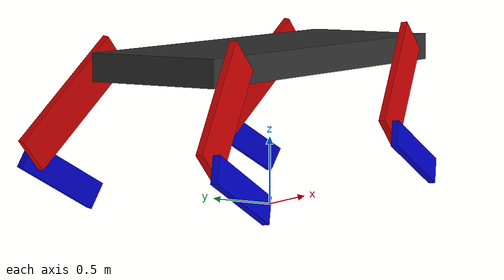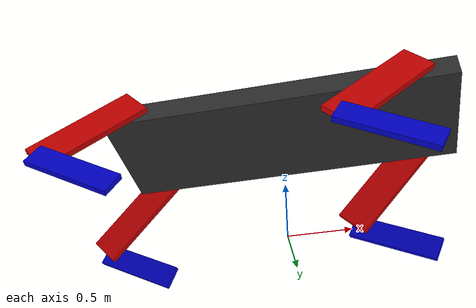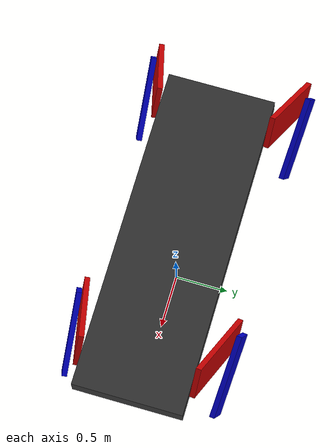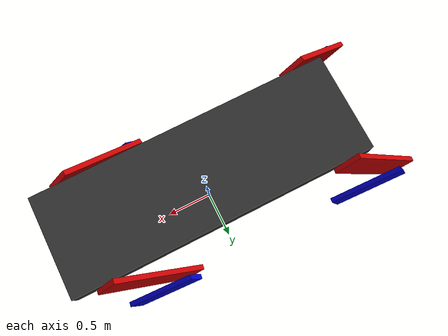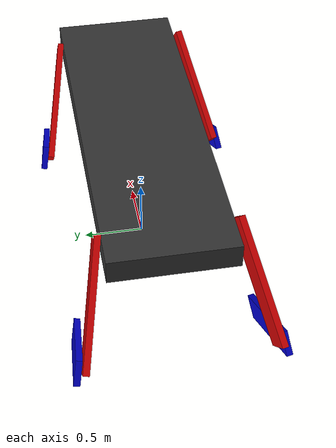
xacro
<?xml version = "1.0"?>
<robot name = "res_robot" xmlns:xacro = "http://www.ros.org/wiki/xacro">

	<!-- Import colors -->
	<xacro:include filename = "$(find res_project)/urdf/materials.xacro" />

	<!-- Robot Dimension Constants -->
	<xacro:property name = "CHASSIS_LENGTH" value = "3" />
	<xacro:property name = "CHASSIS_WIDTH" value = "1" />
	<xacro:property name = "CHASSIS_HEIGHT" value = "0.2" />
	<xacro:property name = "LOWERLEG_LENGTH" value = "0.8" />
	<xacro:property name = "LOWERLEG_WIDTH" value = "0.2" />
	<xacro:property name = "LOWERLEG_HEIGHT" value = "0.05" />
	<xacro:property name = "UPPERLEG_LENGTH" value = "1" />
	<xacro:property name = "UPPERLEG_WIDTH" value = "0.3" />
	<xacro:property name = "UPPERLEG_HEIGHT" value = "0.05" />
	<xacro:property name = "UPPERJOINT_INIT" value = "-0.8" />
	<xacro:property name = "LOWERJOINT_INIT" value = "1.9" />
	<xacro:property name = "SHOULDERJOINT_INIT" value = "0.2" />
	<xacro:property name = "UPPERJOINT_LIMIT" value = "1.57" />
	<xacro:property name = "LOWERJOINT_LIMIT" value = "1.57" />
	<xacro:property name = "SHOULDERJOINT_LIMIT" value = "1.57" />
	<xacro:property name = "DAMP" value = "0.7" />
	<xacro:property name = "VERT_INIT" value = "1.1" />

	<!-- Chassis Link -->
	<link name = "chassis_link">
		<visual>
			<origin xyz = "0 0 ${VERT_INIT}" rpy = "0 0 0" />
			<geometry>
				<box size = "${CHASSIS_LENGTH} ${CHASSIS_WIDTH} ${CHASSIS_HEIGHT}" />
			</geometry>
			<material name = "GREY" />
		</visual>
		<collision>
			<origin xyz = "0 0 ${VERT_INIT}" rpy = "0 0 0" />
			<geometry>
				<box size = "${CHASSIS_LENGTH} ${CHASSIS_WIDTH} ${CHASSIS_HEIGHT}" />
			</geometry>
		</collision>
	</link>

	<!-- Front Left Leg -->
	<!-- FLU joint to Chassis -->
	<link name = "flujoint_link" />
	<joint name = "joint_flu_chassis_z" type = "revolute">
		<parent link = "chassis_link" />
		<child link = "flujoint_link" />
		<origin xyz = "${CHASSIS_LENGTH / 2 - UPPERLEG_WIDTH} ${CHASSIS_WIDTH / 2 + UPPERLEG_HEIGHT} ${CHASSIS_HEIGHT / 2 + VERT_INIT}" rpy = "1.570795 ${1.570795 - UPPERJOINT_INIT} 0" />
		<axis xyz = "0 0 1" />
		<dynamics damping = "${DAMP}" />
		<limit effort = "100.0" velocity = "0.5" lower = "${-UPPERJOINT_LIMIT - UPPERJOINT_INIT}" upper = "${UPPERJOINT_LIMIT - UPPERJOINT_INIT}" />
	</joint>
	<joint name = "joint_flu_chassis_y" type = "revolute">
		<parent link = "flujoint_link" />
		<child link = "flu_link" />
		<origin xyz = "0 0 0" rpy = "0 ${SHOULDERJOINT_INIT} 0" />
		<axis xyz = "0 1 0" />
		<dynamics damping = "${DAMP}" />
		<limit effort = "100.0" velocity = "0.5" lower = "0" upper = "${SHOULDERJOINT_LIMIT}" />
	</joint>

	<!-- FLU Link (Front Left Upper Leg) -->
	<link name = "flu_link">
		<visual>
			<origin xyz = "${UPPERLEG_LENGTH / 2} 0 ${UPPERLEG_HEIGHT / 2}" rpy = "0 0 0" />
			<geometry>
				<box size = "${UPPERLEG_LENGTH} ${UPPERLEG_WIDTH} ${UPPERLEG_HEIGHT}" />
			</geometry>
			<material name = "RED" />
		</visual>
		<collision>
			<origin xyz = "0 0 0" rpy = "0 0 0" />
			<geometry>
				<box size = "${UPPERLEG_LENGTH} ${UPPERLEG_WIDTH} ${UPPERLEG_HEIGHT}" />
			</geometry>
		</collision>
	</link>

	<!-- FLL joint to FLU -->
	<joint name = "joint_fll_flu" type = "revolute">
		<parent link = "flu_link" />
		<child link = "fll_link" />
		<origin xyz = "${UPPERLEG_LENGTH} 0 ${-UPPERLEG_HEIGHT}" rpy = "0 0 ${LOWERJOINT_INIT}" />
		<axis xyz = "0 0 1" />
		<dynamics damping = "${DAMP}" />
		<limit effort = "100.0" velocity = "0.5" lower = "${-LOWERJOINT_LIMIT}" upper = "${LOWERJOINT_LIMIT}" />
	</joint>

	<!-- FLL Link (Front Left Lower Leg) -->
	<link name = "fll_link">
		<visual>
			<origin xyz = "${LOWERLEG_LENGTH / 2} 0 ${LOWERLEG_HEIGHT / 2}" rpy = "0 0 0" />
			<geometry>
				<box size = "${LOWERLEG_LENGTH} ${LOWERLEG_WIDTH} ${LOWERLEG_HEIGHT}" />
			</geometry>
			<material name = "BLUE" />
		</visual>
		<collision>
			<origin xyz = "0 0 0" rpy = "0 0 0" />
			<geometry>
				<box size = "${LOWERLEG_LENGTH} ${LOWERLEG_WIDTH} ${LOWERLEG_HEIGHT}" />
			</geometry>
		</collision>
	</link>

	<!-- Back Left Leg -->
	<!-- BLU joint to Chassis -->
	<link name = "blujoint_link" />
	<joint name = "joint_blu_chassis_z" type = "revolute">
		<parent link = "chassis_link" />
		<child link = "blujoint_link" />
		<origin xyz = "${-(CHASSIS_LENGTH / 2 - UPPERLEG_WIDTH)} ${CHASSIS_WIDTH / 2 + UPPERLEG_HEIGHT} ${CHASSIS_HEIGHT / 2 + VERT_INIT}" rpy = "1.570795 ${1.570795 - UPPERJOINT_INIT} 0" />
		<axis xyz = "0 0 1" />
		<dynamics damping = "${DAMP}" />
		<limit effort = "100.0" velocity = "0.5" lower = "${-UPPERJOINT_LIMIT - UPPERJOINT_INIT}" upper = "${UPPERJOINT_LIMIT - UPPERJOINT_INIT}" />
	</joint>
	<joint name = "joint_blu_chassis_y" type = "revolute">
		<parent link = "blujoint_link" />
		<child link = "blu_link" />
		<origin xyz = "0 0 0" rpy = "0 ${SHOULDERJOINT_INIT} 0" />
		<axis xyz = "0 1 0" />
		<dynamics damping = "${DAMP}" />
		<limit effort = "100.0" velocity = "0.5" lower = "0" upper = "${SHOULDERJOINT_LIMIT}" />
	</joint>

	<!-- BLU Link (Back Left Upper Leg) -->
	<link name = "blu_link">
		<visual>
			<origin xyz = "${UPPERLEG_LENGTH / 2} 0 ${UPPERLEG_HEIGHT / 2}" rpy = "0 0 0" />
			<geometry>
				<box size = "${UPPERLEG_LENGTH} ${UPPERLEG_WIDTH} ${UPPERLEG_HEIGHT}" />
			</geometry>
			<material name = "RED" />
		</visual>
		<collision>
			<origin xyz = "0 0 0" rpy = "0 0 0" />
			<geometry>
				<box size = "${UPPERLEG_LENGTH} ${UPPERLEG_WIDTH} ${UPPERLEG_HEIGHT}" />
			</geometry>
		</collision>
	</link>

	<!-- BLL joint to BLU -->
	<joint name = "joint_bll_blu" type = "revolute">
		<parent link = "blu_link" />
		<child link = "bll_link" />
		<origin xyz = "${UPPERLEG_LENGTH} 0 ${-UPPERLEG_HEIGHT}" rpy = "0 0 ${LOWERJOINT_INIT}" />
		<axis xyz = "0 0 1" />
		<dynamics damping = "${DAMP}" />
		<limit effort = "100.0" velocity = "0.5" lower = "${-LOWERJOINT_LIMIT}" upper = "${LOWERJOINT_LIMIT}" />
	</joint>

	<!-- BLL Link (Back Left Lower Leg) -->
	<link name = "bll_link">
		<visual>
			<origin xyz = "${LOWERLEG_LENGTH / 2} 0 ${LOWERLEG_HEIGHT / 2}" rpy = "0 0 0" />
			<geometry>
				<box size = "${LOWERLEG_LENGTH} ${LOWERLEG_WIDTH} ${LOWERLEG_HEIGHT}" />
			</geometry>
			<material name = "BLUE" />
		</visual>
		<collision>
			<origin xyz = "0 0 0" rpy = "0 0 0" />
			<geometry>
				<box size = "${LOWERLEG_LENGTH} ${LOWERLEG_WIDTH} ${LOWERLEG_HEIGHT}" />
			</geometry>
		</collision>
	</link>

	<!-- Front Right Leg -->
	<!-- FRU joint to Chassis -->
	<link name = "frujoint_link" />
	<joint name = "joint_fru_chassis_z" type = "revolute">
		<parent link = "chassis_link" />
		<child link = "frujoint_link" />
		<origin xyz = "${CHASSIS_LENGTH / 2 - UPPERLEG_WIDTH} ${-(CHASSIS_WIDTH / 2)} ${CHASSIS_HEIGHT / 2 + VERT_INIT}" rpy = "1.570795 ${1.570795 - UPPERJOINT_INIT} 0" />
		<axis xyz = "0 0 1" />
		<dynamics damping = "${DAMP}" />
		<limit effort = "100.0" velocity = "0.5" lower = "${-UPPERJOINT_LIMIT - UPPERJOINT_INIT}" upper = "${UPPERJOINT_LIMIT - UPPERJOINT_INIT}" />
	</joint>
	<joint name = "joint_fru_chassis_y" type = "revolute">
		<parent link = "frujoint_link" />
		<child link = "fru_link" />
		<origin xyz = "0 0 0" rpy = "0 ${-SHOULDERJOINT_INIT} 0" />
		<axis xyz = "0 1 0" />
		<dynamics damping = "${DAMP}" />
		<limit effort = "100.0" velocity = "0.5" lower = "${-SHOULDERJOINT_LIMIT}" upper = "0" />
	</joint>

	<!-- FRU Link (Front Right Upper Leg) -->
	<link name = "fru_link">
		<visual>
			<origin xyz = "${UPPERLEG_LENGTH / 2} 0 ${UPPERLEG_HEIGHT / 2}" rpy = "0 0 0" />
			<geometry>
				<box size = "${UPPERLEG_LENGTH} ${UPPERLEG_WIDTH} ${UPPERLEG_HEIGHT}" />
			</geometry>
			<material name = "RED" />
		</visual>
		<collision>
			<origin xyz = "0 0 0" rpy = "0 0 0" />
			<geometry>
				<box size = "${UPPERLEG_LENGTH} ${UPPERLEG_WIDTH} ${UPPERLEG_HEIGHT}" />
			</geometry>
		</collision>
	</link>

	<!-- FRL joint to FRU -->
	<joint name = "joint_frl_fru" type = "revolute">
		<parent link = "fru_link" />
		<child link = "frl_link" />
		<origin xyz = "${UPPERLEG_LENGTH} 0 ${UPPERLEG_HEIGHT}" rpy = "0 0 ${LOWERJOINT_INIT}" />
		<axis xyz = "0 0 1" />
		<dynamics damping = "${DAMP}" />
		<limit effort = "100.0" velocity = "0.5" lower = "${-LOWERJOINT_LIMIT}" upper = "${LOWERJOINT_LIMIT}" />
	</joint>

	<!-- FRL Link (Front Right Lower Leg) -->
	<link name = "frl_link">
		<visual>
			<origin xyz = "${LOWERLEG_LENGTH / 2} 0 ${LOWERLEG_HEIGHT / 2}" rpy = "0 0 0" />
			<geometry>
				<box size = "${LOWERLEG_LENGTH} ${LOWERLEG_WIDTH} ${LOWERLEG_HEIGHT}" />
			</geometry>
			<material name = "BLUE" />
		</visual>
		<collision>
			<origin xyz = "0 0 0" rpy = "0 0 0" />
			<geometry>
				<box size = "${LOWERLEG_LENGTH} ${LOWERLEG_WIDTH} ${LOWERLEG_HEIGHT}" />
			</geometry>
		</collision>
	</link>

	<!-- Back Right Leg -->
	<!-- BRU joint to Chassis -->
	<link name = "brujoint_link" />
	<joint name = "joint_bru_chassis_z" type = "revolute">
		<parent link = "chassis_link" />
		<child link = "brujoint_link" />
		<origin xyz = "${-(CHASSIS_LENGTH / 2 - UPPERLEG_WIDTH)} ${-(CHASSIS_WIDTH / 2)} ${CHASSIS_HEIGHT / 2 + VERT_INIT}" rpy = "1.570795 ${1.570795 - UPPERJOINT_INIT} 0" />
		<axis xyz = "0 0 1" />
		<dynamics damping = "${DAMP}" />
		<limit effort = "100.0" velocity = "0.5" lower = "${-UPPERJOINT_LIMIT - UPPERJOINT_INIT}" upper = "${UPPERJOINT_LIMIT - UPPERJOINT_INIT}" />
	</joint>
	<joint name = "joint_bru_chassis_y" type = "revolute">
		<parent link = "brujoint_link" />
		<child link = "bru_link" />
		<origin xyz = "0 0 0" rpy = "0 ${-SHOULDERJOINT_INIT} 0" />
		<axis xyz = "0 1 0" />
		<dynamics damping = "${DAMP}" />
		<limit effort = "100.0" velocity = "0.5" lower = "${-SHOULDERJOINT_LIMIT}" upper = "0" />
	</joint>

	<!-- BRU Link (Back Right Upper Leg) -->
	<link name = "bru_link">
		<visual>
			<origin xyz = "${UPPERLEG_LENGTH / 2} 0 ${UPPERLEG_HEIGHT / 2}" rpy = "0 0 0" />
			<geometry>
				<box size = "${UPPERLEG_LENGTH} ${UPPERLEG_WIDTH} ${UPPERLEG_HEIGHT}" />
			</geometry>
			<material name = "RED" />
		</visual>
		<collision>
			<origin xyz = "0 0 0" rpy = "0 0 0" />
			<geometry>
				<box size = "${UPPERLEG_LENGTH} ${UPPERLEG_WIDTH} ${UPPERLEG_HEIGHT}" />
			</geometry>
		</collision>
	</link>

	<!-- BRL joint to BRU -->
	<joint name = "joint_brl_bru" type = "revolute">
		<parent link = "bru_link" />
		<child link = "brl_link" />
		<origin xyz = "${UPPERLEG_LENGTH} 0 ${UPPERLEG_HEIGHT}" rpy = "0 0 ${LOWERJOINT_INIT}" />
		<axis xyz = "0 0 1" />
		<dynamics damping = "${DAMP}" />
		<limit effort = "100.0" velocity = "0.5" lower = "${-LOWERJOINT_LIMIT}" upper = "${LOWERJOINT_LIMIT}" />
	</joint>

	<!-- BRL Link (Back Right Lower Leg) -->
	<link name = "brl_link">
		<visual>
			<origin xyz = "${LOWERLEG_LENGTH / 2} 0 ${LOWERLEG_HEIGHT / 2}" rpy = "0 0 0" />
			<geometry>
				<box size = "${LOWERLEG_LENGTH} ${LOWERLEG_WIDTH} ${LOWERLEG_HEIGHT}" />
			</geometry>
			<material name = "BLUE" />
		</visual>
		<collision>
			<origin xyz = "0 0 0" rpy = "0 0 0" />
			<geometry>
				<box size = "${LOWERLEG_LENGTH} ${LOWERLEG_WIDTH} ${LOWERLEG_HEIGHT}" />
			</geometry>
		</collision>
	</link>
</robot>

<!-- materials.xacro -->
<robot>
	<material name = "GREY">
		<color rgba = "0.2 0.2 0.2 1.0" />
	</material>

	<material name = "RED">
		<color rgba = "0.8 0.0 0.0 1.0" />
	</material>

	<material name = "BLUE">
		<color rgba = "0.0 0.0 0.8 1.0" />
	</material>
</robot>
